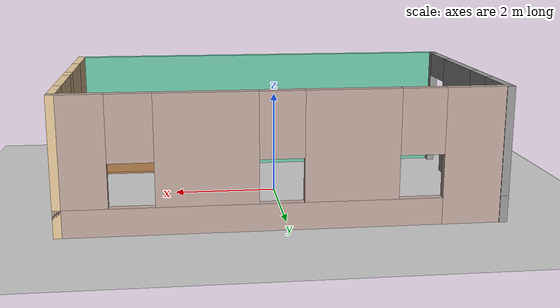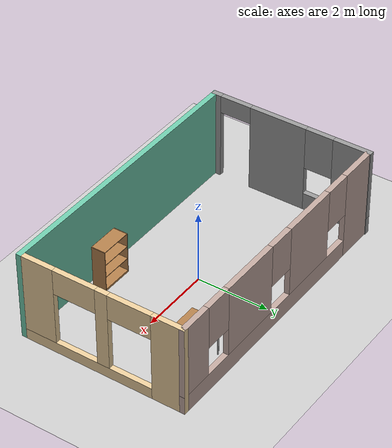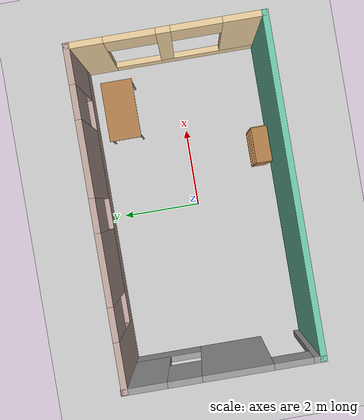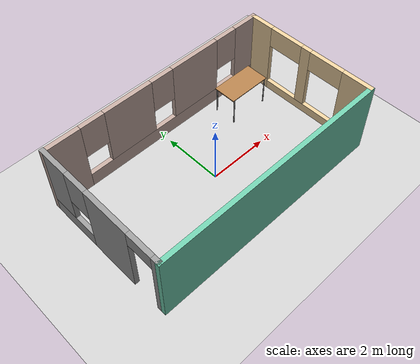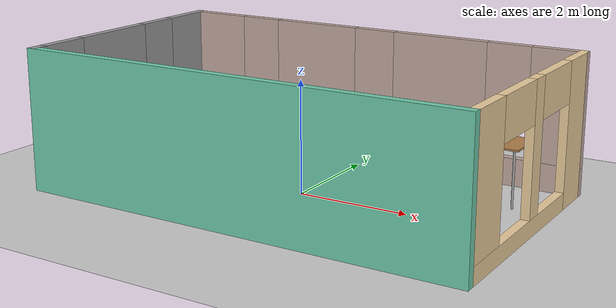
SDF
<sdf version="1.6">
 <world name="default">
  <light name="sun" type="directional">
   <pose>0 0 10 0 -0 0</pose>
   <diffuse>0.8 0.8 0.8 1</diffuse>
   <specular>0.2 0.2 0.2 1</specular>
   <attenuation>
    <range>1000</range>
    <constant>0.9</constant>
    <linear>0.01</linear>
    <quadratic>0.001</quadratic>
   </attenuation>
   <direction>-0.5 0.1 -0.9</direction>
  </light>
  <model name="ground_plane">
   <static>1</static>
   <link name="link">
    <collision name="collision">
     <geometry><plane><normal>0 0 1</normal><size>100 100</size></plane></geometry>
     <surface>
      <contact><collide_bitmask>65535</collide_bitmask></contact>
      <friction><ode><mu>100</mu><mu2>50</mu2></ode></friction>
     </surface>
    </collision>
    <visual name="visual">
     <cast_shadows>0</cast_shadows>
     <geometry><plane><normal>0 0 1</normal><size>100 100</size></plane></geometry>
     <material>
      <script><uri>file://media/materials/scripts/gazebo.material</uri><name>Gazebo/Grey</name></script>
     </material>
    </visual>
   </link>
  </model>
  <gravity>0 0 -9.8</gravity>
  <magnetic_field>6e-06 2.3e-05 -4.2e-05</magnetic_field>
  <atmosphere type="adiabatic"/>
  <physics name="default_physics" default="0" type="ode">
   <max_step_size>0.001</max_step_size>
   <real_time_factor>1</real_time_factor>
   <real_time_update_rate>1000</real_time_update_rate>
  </physics>
  <scene><ambient>0.4 0.4 0.4 1</ambient><background>0.7 0.7 0.7 1</background><shadows>1</shadows></scene>
  <spherical_coordinates>
   <surface_model>EARTH_WGS84</surface_model>
   <latitude_deg>0</latitude_deg>
   <longitude_deg>0</longitude_deg>
   <elevation>0</elevation>
   <heading_deg>0</heading_deg>
  </spherical_coordinates>
  <model name="small_room">
   <pose>0.050484 0.100522 0 0 -0 0</pose>
   <link name="Wall_10">
    <pose>-3.9575 0.0075 0 0 -0 1.5708</pose>
    <visual name="Wall_10_Visual_0">
     <pose>-2.21229 0 1.25 0 -0 0</pose>
     <geometry><box><size>0.285414 0.15 2.5</size></box></geometry>
     <material>
      <script><uri>file://media/materials/scripts/gazebo.material</uri><name>Gazebo/Grey</name></script>
      <ambient>1 1 1 1</ambient>
     </material>
     <meta><layer>0</layer></meta>
    </visual>
    <collision name="Wall_10_Collision_0">
     <geometry><box><size>0.285414 0.15 2.5</size></box></geometry>
     <pose>-2.21229 0 1.25 0 -0 0</pose>
    </collision>
    <visual name="Wall_10_Visual_1">
     <pose>-0.344517 0 1.25 0 -0 0</pose>
     <geometry><box><size>1.65014 0.15 2.5</size></box></geometry>
     <material>
      <script><uri>file://media/materials/scripts/gazebo.material</uri><name>Gazebo/Grey</name></script>
      <ambient>1 1 1 1</ambient>
     </material>
     <meta><layer>0</layer></meta>
    </visual>
    <collision name="Wall_10_Collision_1">
     <geometry><box><size>1.65014 0.15 2.5</size></box></geometry>
     <pose>-0.344517 0 1.25 0 -0 0</pose>
    </collision>
    <visual name="Wall_10_Visual_2">
     <pose>1.41778 0 0.25 0 -0 0</pose>
     <geometry><box><size>1.87445 0.15 0.5</size></box></geometry>
     <material>
      <script><uri>file://media/materials/scripts/gazebo.material</uri><name>Gazebo/Grey</name></script>
      <ambient>1 1 1 1</ambient>
     </material>
     <meta><layer>0</layer></meta>
    </visual>
    <collision name="Wall_10_Collision_2">
     <geometry><box><size>1.87445 0.15 0.5</size></box></geometry>
     <pose>1.41778 0 0.25 0 -0 0</pose>
    </collision>
    <visual name="Wall_10_Visual_3">
     <pose>1.81778 0 1.5 0 -0 0</pose>
     <geometry><box><size>1.07445 0.15 2</size></box></geometry>
     <material>
      <script><uri>file://media/materials/scripts/gazebo.material</uri><name>Gazebo/Grey</name></script>
      <ambient>1 1 1 1</ambient>
     </material>
     <meta><layer>0</layer></meta>
    </visual>
    <collision name="Wall_10_Collision_3">
     <geometry><box><size>1.07445 0.15 2</size></box></geometry>
     <pose>1.81778 0 1.5 0 -0 0</pose>
    </collision>
    <visual name="Wall_10_Visual_4">
     <pose>0.880552 0 1.9 0 -0 0</pose>
     <geometry><box><size>0.8 0.15 1.2</size></box></geometry>
     <material>
      <script><uri>file://media/materials/scripts/gazebo.material</uri><name>Gazebo/Grey</name></script>
      <ambient>1 1 1 1</ambient>
     </material>
     <meta><layer>0</layer></meta>
    </visual>
    <collision name="Wall_10_Collision_4">
     <geometry><box><size>0.8 0.15 1.2</size></box></geometry>
     <pose>0.880552 0 1.9 0 -0 0</pose>
    </collision>
    <visual name="Wall_10_Visual_5">
     <pose>-1.61959 0 2.25 0 -0 0</pose>
     <geometry><box><size>0.9 0.15 0.5</size></box></geometry>
     <material>
      <script><uri>file://media/materials/scripts/gazebo.material</uri><name>Gazebo/Grey</name></script>
      <ambient>1 1 1 1</ambient>
     </material>
     <meta><layer>0</layer></meta>
    </visual>
    <collision name="Wall_10_Collision_5">
     <geometry><box><size>0.9 0.15 0.5</size></box></geometry>
     <pose>-1.61959 0 2.25 0 -0 0</pose>
    </collision>
   </link>
   <link name="Wall_7">
    <pose>0 2.2725 0 0 -0 0</pose>
    <visual name="Wall_7_Visual_0">
     <pose>-3.42374 0 1.25 0 -0 0</pose>
     <geometry><box><size>1.21759 0.15 2.5</size></box></geometry>
     <material>
      <script><uri>file://media/materials/scripts/gazebo.material</uri><name>Gazebo/Grey</name></script>
      <ambient>0.760784 0.662745 0.627451 1</ambient>
     </material>
     <meta><layer>0</layer></meta>
    </visual>
    <collision name="Wall_7_Collision_0">
     <geometry><box><size>1.21759 0.15 2.5</size></box></geometry>
     <pose>-3.42374 0 1.25 0 -0 0</pose>
    </collision>
    <visual name="Wall_7_Visual_1">
     <pose>0.608793 0 0.25 0 -0 0</pose>
     <geometry><box><size>6.84747 0.15 0.5</size></box></geometry>
     <material>
      <script><uri>file://media/materials/scripts/gazebo.material</uri><name>Gazebo/Grey</name></script>
      <ambient>0.760784 0.662745 0.627451 1</ambient>
     </material>
     <meta><layer>0</layer></meta>
    </visual>
    <collision name="Wall_7_Collision_1">
     <geometry><box><size>6.84747 0.15 0.5</size></box></geometry>
     <pose>0.608793 0 0.25 0 -0 0</pose>
    </collision>
    <visual name="Wall_7_Visual_2">
     <pose>-1.16703 0 1.5 0 -0 0</pose>
     <geometry><box><size>1.69582 0.15 2</size></box></geometry>
     <material>
      <script><uri>file://media/materials/scripts/gazebo.material</uri><name>Gazebo/Grey</name></script>
      <ambient>0.760784 0.662745 0.627451 1</ambient>
     </material>
     <meta><layer>0</layer></meta>
    </visual>
    <collision name="Wall_7_Collision_2">
     <geometry><box><size>1.69582 0.15 2</size></box></geometry>
     <pose>-1.16703 0 1.5 0 -0 0</pose>
    </collision>
    <visual name="Wall_7_Visual_3">
     <pose>1.38079 0 1.5 0 -0 0</pose>
     <geometry><box><size>1.79982 0.15 2</size></box></geometry>
     <material>
      <script><uri>file://media/materials/scripts/gazebo.material</uri><name>Gazebo/Grey</name></script>
      <ambient>0.760784 0.662745 0.627451 1</ambient>
     </material>
     <meta><layer>0</layer></meta>
    </visual>
    <collision name="Wall_7_Collision_3">
     <geometry><box><size>1.79982 0.15 2</size></box></geometry>
     <pose>1.38079 0 1.5 0 -0 0</pose>
    </collision>
    <visual name="Wall_7_Visual_4">
     <pose>3.55661 0 1.5 0 -0 0</pose>
     <geometry><box><size>0.951828 0.15 2</size></box></geometry>
     <material>
      <script><uri>file://media/materials/scripts/gazebo.material</uri><name>Gazebo/Grey</name></script>
      <ambient>0.760784 0.662745 0.627451 1</ambient>
     </material>
     <meta><layer>0</layer></meta>
    </visual>
    <collision name="Wall_7_Collision_4">
     <geometry><box><size>0.951828 0.15 2</size></box></geometry>
     <pose>3.55661 0 1.5 0 -0 0</pose>
    </collision>
    <visual name="Wall_7_Visual_5">
     <pose>-2.41494 0 1.9 0 -0 0</pose>
     <geometry><box><size>0.8 0.15 1.2</size></box></geometry>
     <material>
      <script><uri>file://media/materials/scripts/gazebo.material</uri><name>Gazebo/Grey</name></script>
      <ambient>0.760784 0.662745 0.627451 1</ambient>
     </material>
     <meta><layer>0</layer></meta>
    </visual>
    <collision name="Wall_7_Collision_5">
     <geometry><box><size>0.8 0.15 1.2</size></box></geometry>
     <pose>-2.41494 0 1.9 0 -0 0</pose>
    </collision>
    <visual name="Wall_7_Visual_6">
     <pose>0.080883 0 1.9 0 -0 0</pose>
     <geometry><box><size>0.8 0.15 1.2</size></box></geometry>
     <material>
      <script><uri>file://media/materials/scripts/gazebo.material</uri><name>Gazebo/Grey</name></script>
      <ambient>0.760784 0.662745 0.627451 1</ambient>
     </material>
     <meta><layer>0</layer></meta>
    </visual>
    <collision name="Wall_7_Collision_6">
     <geometry><box><size>0.8 0.15 1.2</size></box></geometry>
     <pose>0.080883 0 1.9 0 -0 0</pose>
    </collision>
    <visual name="Wall_7_Visual_7">
     <pose>2.6807 0 1.9 0 -0 0</pose>
     <geometry><box><size>0.8 0.15 1.2</size></box></geometry>
     <material>
      <script><uri>file://media/materials/scripts/gazebo.material</uri><name>Gazebo/Grey</name></script>
      <ambient>0.760784 0.662745 0.627451 1</ambient>
     </material>
     <meta><layer>0</layer></meta>
    </visual>
    <collision name="Wall_7_Collision_7">
     <geometry><box><size>0.8 0.15 1.2</size></box></geometry>
     <pose>2.6807 0 1.9 0 -0 0</pose>
    </collision>
   </link>
   <link name="Wall_8">
    <pose>3.9575 0 0 0 0 -1.5708</pose>
    <visual name="Wall_8_Visual_0">
     <pose>-1.88907 0 1.25 0 -0 0</pose>
     <geometry><box><size>0.916862 0.15 2.5</size></box></geometry>
     <material>
      <script><uri>file://media/materials/scripts/gazebo.material</uri><name>Gazebo/Grey</name></script>
      <ambient>0.921569 0.807843 0.615686 1</ambient>
     </material>
     <meta><layer>0</layer></meta>
    </visual>
    <collision name="Wall_8_Collision_0">
     <geometry><box><size>0.916862 0.15 2.5</size></box></geometry>
     <pose>-1.88907 0 1.25 0 -0 0</pose>
    </collision>
    <visual name="Wall_8_Visual_1">
     <pose>0.458431 0 0.15 0 -0 0</pose>
     <geometry><box><size>3.77814 0.15 0.3</size></box></geometry>
     <material>
      <script><uri>file://media/materials/scripts/gazebo.material</uri><name>Gazebo/Grey</name></script>
      <ambient>0.921569 0.807843 0.615686 1</ambient>
     </material>
     <meta><layer>0</layer></meta>
    </visual>
    <collision name="Wall_8_Collision_1">
     <geometry><box><size>3.77814 0.15 0.3</size></box></geometry>
     <pose>0.458431 0 0.15 0 -0 0</pose>
    </collision>
    <visual name="Wall_8_Visual_2">
     <pose>-0.058771 0 1.4 0 -0 0</pose>
     <geometry><box><size>0.343733 0.15 2.2</size></box></geometry>
     <material>
      <script><uri>file://media/materials/scripts/gazebo.material</uri><name>Gazebo/Grey</name></script>
      <ambient>0.921569 0.807843 0.615686 1</ambient>
     </material>
     <meta><layer>0</layer></meta>
    </visual>
    <collision name="Wall_8_Collision_2">
     <geometry><box><size>0.343733 0.15 2.2</size></box></geometry>
     <pose>-0.058771 0 1.4 0 -0 0</pose>
    </collision>
    <visual name="Wall_8_Visual_3">
     <pose>1.8303 0 1.4 0 -0 0</pose>
     <geometry><box><size>1.03441 0.15 2.2</size></box></geometry>
     <material>
      <script><uri>file://media/materials/scripts/gazebo.material</uri><name>Gazebo/Grey</name></script>
      <ambient>0.921569 0.807843 0.615686 1</ambient>
     </material>
     <meta><layer>0</layer></meta>
    </visual>
    <collision name="Wall_8_Collision_3">
     <geometry><box><size>1.03441 0.15 2.2</size></box></geometry>
     <pose>1.8303 0 1.4 0 -0 0</pose>
    </collision>
    <visual name="Wall_8_Visual_4">
     <pose>-0.830638 0 2.15 0 -0 0</pose>
     <geometry><box><size>1.2 0.15 0.7</size></box></geometry>
     <material>
      <script><uri>file://media/materials/scripts/gazebo.material</uri><name>Gazebo/Grey</name></script>
      <ambient>0.921569 0.807843 0.615686 1</ambient>
     </material>
     <meta><layer>0</layer></meta>
    </visual>
    <collision name="Wall_8_Collision_4">
     <geometry><box><size>1.2 0.15 0.7</size></box></geometry>
     <pose>-0.830638 0 2.15 0 -0 0</pose>
    </collision>
    <visual name="Wall_8_Visual_5">
     <pose>0.713095 0 2.15 0 -0 0</pose>
     <geometry><box><size>1.2 0.15 0.7</size></box></geometry>
     <material>
      <script><uri>file://media/materials/scripts/gazebo.material</uri><name>Gazebo/Grey</name></script>
      <ambient>0.921569 0.807843 0.615686 1</ambient>
     </material>
     <meta><layer>0</layer></meta>
    </visual>
    <collision name="Wall_8_Collision_5">
     <geometry><box><size>1.2 0.15 0.7</size></box></geometry>
     <pose>0.713095 0 2.15 0 -0 0</pose>
    </collision>
   </link>
   <link name="Wall_9">
    <collision name="Wall_9_Collision">
     <geometry><box><size>8.06506 0.15 2.5</size></box></geometry>
     <pose>0 0 1.25 0 -0 0</pose>
    </collision>
    <visual name="Wall_9_Visual">
     <pose>0 0 1.25 0 -0 0</pose>
     <geometry><box><size>8.06506 0.15 2.5</size></box></geometry>
     <material>
      <script><uri>file://media/materials/scripts/gazebo.material</uri><name>Gazebo/Grey</name></script>
      <ambient>0.435294 0.796078 0.67451 1</ambient>
     </material>
     <meta><layer>0</layer></meta>
    </visual>
    <pose>0 -2.2875 0 0 -0 3.14159</pose>
   </link>
   <static>1</static>
  </model>
  <model name="table">
   <static>1</static>
   <link name="link">
    <collision name="surface">
     <pose>0 0 1 0 -0 0</pose>
     <geometry><box><size>1.5 0.8 0.03</size></box></geometry>
     <surface><friction><ode><mu>0.6</mu><mu2>0.6</mu2></ode></friction></surface>
    </collision>
    <visual name="visual1">
     <pose>0 0 1 0 -0 0</pose>
     <geometry><box><size>1.5 0.8 0.03</size></box></geometry>
     <material>
      <script><uri>file://media/materials/scripts/gazebo.material</uri><name>Gazebo/Wood</name></script>
     </material>
    </visual>
    <collision name="front_left_leg">
     <pose>0.68 0.38 0.5 0 -0 0</pose>
     <geometry><cylinder><radius>0.02</radius><length>1</length></cylinder></geometry>
    </collision>
    <visual name="front_left_leg">
     <pose>0.68 0.38 0.5 0 -0 0</pose>
     <geometry><cylinder><radius>0.02</radius><length>1</length></cylinder></geometry>
     <material>
      <script><uri>file://media/materials/scripts/gazebo.material</uri><name>Gazebo/Grey</name></script>
     </material>
    </visual>
    <collision name="front_right_leg">
     <pose>0.68 -0.38 0.5 0 -0 0</pose>
     <geometry><cylinder><radius>0.02</radius><length>1</length></cylinder></geometry>
    </collision>
    <visual name="front_right_leg">
     <pose>0.68 -0.38 0.5 0 -0 0</pose>
     <geometry><cylinder><radius>0.02</radius><length>1</length></cylinder></geometry>
     <material>
      <script><uri>file://media/materials/scripts/gazebo.material</uri><name>Gazebo/Grey</name></script>
     </material>
    </visual>
    <collision name="back_right_leg">
     <pose>-0.68 -0.38 0.5 0 -0 0</pose>
     <geometry><cylinder><radius>0.02</radius><length>1</length></cylinder></geometry>
    </collision>
    <visual name="back_right_leg">
     <pose>-0.68 -0.38 0.5 0 -0 0</pose>
     <geometry><cylinder><radius>0.02</radius><length>1</length></cylinder></geometry>
     <material>
      <script><uri>file://media/materials/scripts/gazebo.material</uri><name>Gazebo/Grey</name></script>
     </material>
    </visual>
    <collision name="back_left_leg">
     <pose>-0.68 0.38 0.5 0 -0 0</pose>
     <geometry><cylinder><radius>0.02</radius><length>1</length></cylinder></geometry>
    </collision>
    <visual name="back_left_leg">
     <pose>-0.68 0.38 0.5 0 -0 0</pose>
     <geometry><cylinder><radius>0.02</radius><length>1</length></cylinder></geometry>
     <material>
      <script><uri>file://media/materials/scripts/gazebo.material</uri><name>Gazebo/Grey</name></script>
     </material>
    </visual>
   </link>
   <pose>2.6695 1.5486 0 0 -0 0</pose>
  </model>
  <model name="bookshelf">
   <static>1</static>
   <link name="link">
    <inertial><mass>1</mass></inertial>
    <collision name="back">
     <pose>0 0.005 0.6 0 -0 0</pose>
     <geometry><box><size>0.9 0.01 1.2</size></box></geometry>
    </collision>
    <visual name="visual1">
     <pose>0 0.005 0.6 0 -0 0</pose>
     <geometry><box><size>0.9 0.01 1.2</size></box></geometry>
     <material>
      <script><uri>file://media/materials/scripts/gazebo.material</uri><name>Gazebo/Wood</name></script>
     </material>
    </visual>
    <collision name="left_side">
     <pose>0.45 -0.195 0.6 0 -0 0</pose>
     <geometry><box><size>0.02 0.4 1.2</size></box></geometry>
    </collision>
    <visual name="visual2">
     <pose>0.45 -0.195 0.6 0 -0 0</pose>
     <geometry><box><size>0.02 0.4 1.2</size></box></geometry>
     <material>
      <script><uri>file://media/materials/scripts/gazebo.material</uri><name>Gazebo/Wood</name></script>
     </material>
    </visual>
    <collision name="right_side">
     <pose>-0.45 -0.195 0.6 0 -0 0</pose>
     <geometry><box><size>0.02 0.4 1.2</size></box></geometry>
    </collision>
    <visual name="visual3">
     <pose>-0.45 -0.195 0.6 0 -0 0</pose>
     <geometry><box><size>0.02 0.4 1.2</size></box></geometry>
     <material>
      <script><uri>file://media/materials/scripts/gazebo.material</uri><name>Gazebo/Wood</name></script>
     </material>
    </visual>
    <collision name="bottom">
     <pose>0 -0.195 0.03 0 -0 0</pose>
     <geometry><box><size>0.88 0.4 0.06</size></box></geometry>
    </collision>
    <visual name="visual4">
     <pose>0 -0.195 0.03 0 -0 0</pose>
     <geometry><box><size>0.88 0.4 0.06</size></box></geometry>
     <material>
      <script><uri>file://media/materials/scripts/gazebo.material</uri><name>Gazebo/Wood</name></script>
     </material>
    </visual>
    <collision name="top">
     <pose>0 -0.195 1.19 0 -0 0</pose>
     <geometry><box><size>0.88 0.4 0.02</size></box></geometry>
    </collision>
    <visual name="visual5">
     <pose>0 -0.195 1.19 0 -0 0</pose>
     <geometry><box><size>0.88 0.4 0.02</size></box></geometry>
     <material>
      <script><uri>file://media/materials/scripts/gazebo.material</uri><name>Gazebo/Wood</name></script>
     </material>
    </visual>
    <collision name="low_shelf">
     <pose>0 -0.195 0.43 0 -0 0</pose>
     <geometry><box><size>0.88 0.4 0.02</size></box></geometry>
    </collision>
    <visual name="visual6">
     <pose>0 -0.195 0.43 0 -0 0</pose>
     <geometry><box><size>0.88 0.4 0.02</size></box></geometry>
     <material>
      <script><uri>file://media/materials/scripts/gazebo.material</uri><name>Gazebo/Wood</name></script>
     </material>
    </visual>
    <collision name="high_shelf">
     <pose>0 -0.195 0.8 0 -0 0</pose>
     <geometry><box><size>0.88 0.4 0.02</size></box></geometry>
    </collision>
    <visual name="visual7">
     <pose>0 -0.195 0.8 0 -0 0</pose>
     <geometry><box><size>0.88 0.4 0.02</size></box></geometry>
     <material>
      <script><uri>file://media/materials/scripts/gazebo.material</uri><name>Gazebo/Wood</name></script>
     </material>
    </visual>
   </link>
   <pose>1.20143 -1.98572 0 0 -0 3.1415</pose>
  </model>
 </world>
</sdf>
